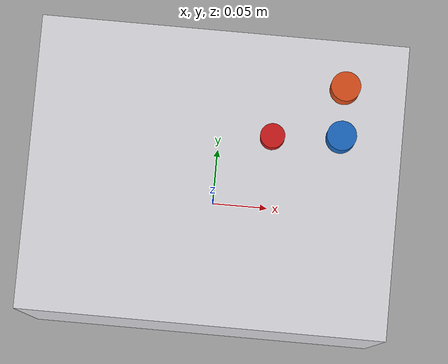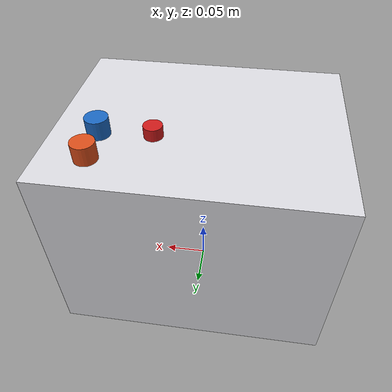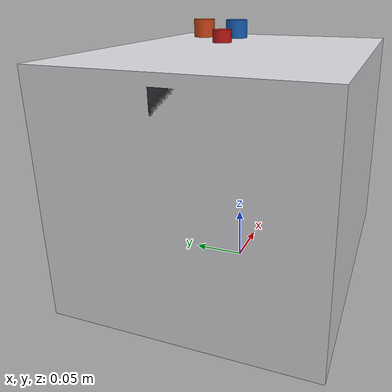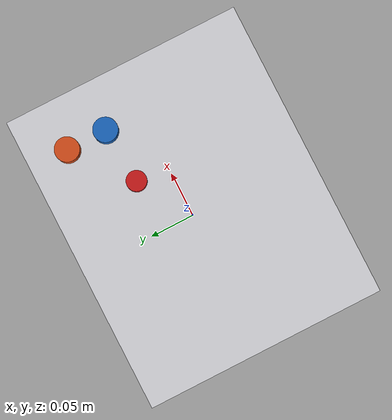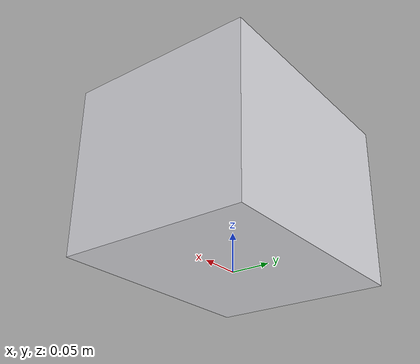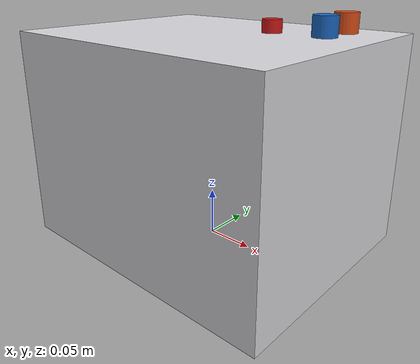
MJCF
<?xml version="1.0" encoding="utf-8"?>
<mujoco model="real_lab_groningen_university_cell_sorter">
  <compiler angle="radian" autolimits="true"/>
  <default>
    <default class="body"><geom contype="1" conaffinity="1"/></default>
  </default>
  <worldbody>
    <body name="base">
      <geom type="box" size="0.15 0.12 0.11" pos="0 0 0.11" rgba="0.85 0.85 0.87 1" class="body"/>
      <geom type="box" size="0.045 0.006 0.0275" pos="-0.075 -0.108 0.165" rgba="0.05 0.45 0.65 1" class="body"/>
      <geom type="cylinder" size="0.01 0.008" pos="0.045 0.036 0.225" rgba="0.8 0.1 0.1 1" class="body"/>
      <geom type="cylinder" size="0.012 0.015" pos="0.1 0.08 0.225" rgba="0.85 0.3 0.1 1" class="body"/>
      <geom type="cylinder" size="0.012 0.015" pos="0.1 0.04 0.225" rgba="0.1 0.4 0.75 1" class="body"/>
      <body name="sample_probe_arm" pos="-0.15 0.0 0.2">
        <joint name="sample_probe_arm_joint" type="hinge" axis="0 1 0" range="-1.2 0" damping="0.5" frictionloss="0.2"/>
  <geom type="box" size="0.06 0.012 0.01" pos="0.06 0 0" rgba="0.2 0.2 0.22 1" class="body"/>
  <geom type="cylinder" size="0.004 0.03" pos="0.12 0 -0.03" rgba="0.75 0.75 0.78 1" class="body"/>
      </body>
    </body>
  </worldbody>
</mujoco>
